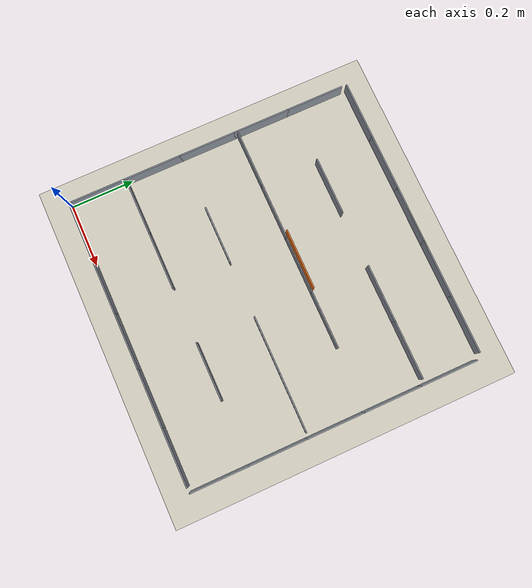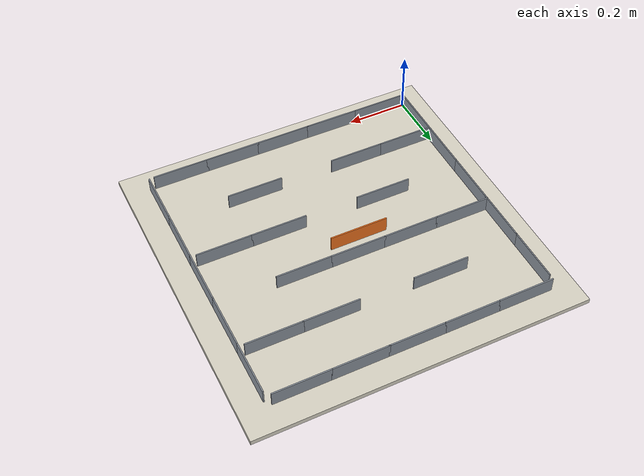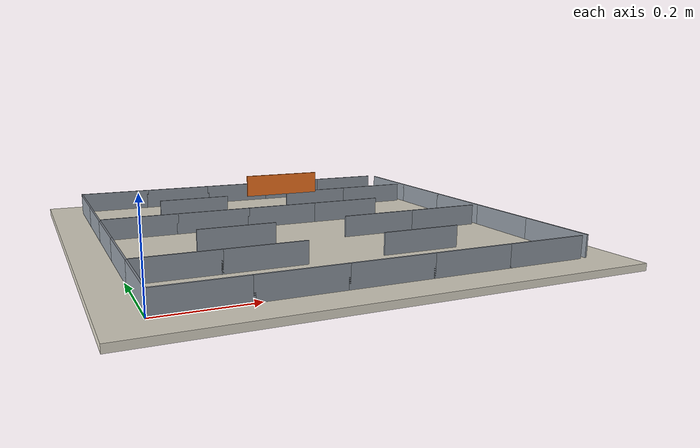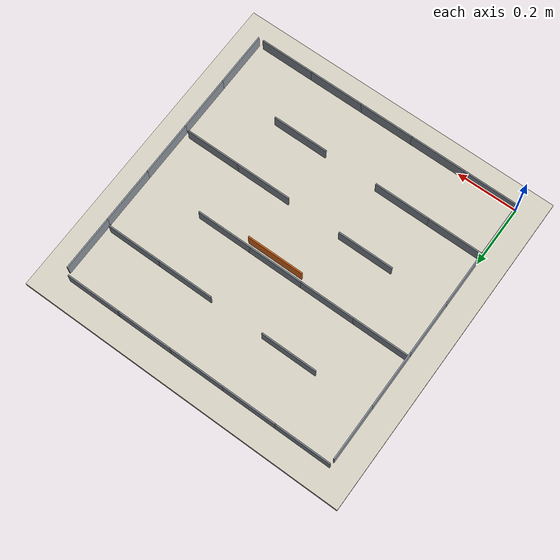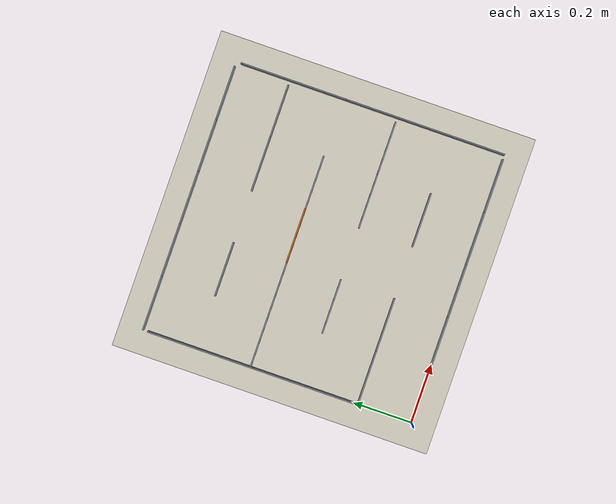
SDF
<?xml version="1.0" ?>
<sdf version="1.6">
  <world name="shiftgate_arena">
    <include><uri>model://sun</uri></include>
    <gravity>0 0 -9.8</gravity>
    <model name="ground">
      <static>true</static>
      <link name="link">
        <collision name="c"><geometry><box><size>1.084 1.084 0.016</size></box></geometry></collision>
        <visual name="v"><geometry><box><size>1.084 1.084 0.016</size></box></geometry>
          <material><ambient>0.86 0.84 0.78 1</ambient><diffuse>0.86 0.84 0.78 1</diffuse></material>
        </visual>
        <pose>0.4620 0.4620 -0.008 0 0 0</pose>
      </link>
    </model>
    <model name="south_0">
      <static>true</static>
      <link name="link">
        <collision name="c"><geometry><box><size>0.1840 0.0040 0.0500</size></box></geometry></collision>
        <visual name="v"><geometry><box><size>0.1840 0.0040 0.0500</size></box></geometry>
          <material><ambient>0.55 0.58 0.62 1</ambient><diffuse>0.55 0.58 0.62 1</diffuse></material>
        </visual>
        <pose>0.0940 0.0020 0.0250 0 0 0</pose>
      </link>
    </model>
    <model name="north_0">
      <static>true</static>
      <link name="link">
        <collision name="c"><geometry><box><size>0.1840 0.0040 0.0500</size></box></geometry></collision>
        <visual name="v"><geometry><box><size>0.1840 0.0040 0.0500</size></box></geometry>
          <material><ambient>0.55 0.58 0.62 1</ambient><diffuse>0.55 0.58 0.62 1</diffuse></material>
        </visual>
        <pose>0.0940 0.9220 0.0250 0 0 0</pose>
      </link>
    </model>
    <model name="south_1">
      <static>true</static>
      <link name="link">
        <collision name="c"><geometry><box><size>0.1840 0.0040 0.0500</size></box></geometry></collision>
        <visual name="v"><geometry><box><size>0.1840 0.0040 0.0500</size></box></geometry>
          <material><ambient>0.55 0.58 0.62 1</ambient><diffuse>0.55 0.58 0.62 1</diffuse></material>
        </visual>
        <pose>0.2740 0.0020 0.0250 0 0 0</pose>
      </link>
    </model>
    <model name="north_1">
      <static>true</static>
      <link name="link">
        <collision name="c"><geometry><box><size>0.1840 0.0040 0.0500</size></box></geometry></collision>
        <visual name="v"><geometry><box><size>0.1840 0.0040 0.0500</size></box></geometry>
          <material><ambient>0.55 0.58 0.62 1</ambient><diffuse>0.55 0.58 0.62 1</diffuse></material>
        </visual>
        <pose>0.2740 0.9220 0.0250 0 0 0</pose>
      </link>
    </model>
    <model name="south_2">
      <static>true</static>
      <link name="link">
        <collision name="c"><geometry><box><size>0.1840 0.0040 0.0500</size></box></geometry></collision>
        <visual name="v"><geometry><box><size>0.1840 0.0040 0.0500</size></box></geometry>
          <material><ambient>0.55 0.58 0.62 1</ambient><diffuse>0.55 0.58 0.62 1</diffuse></material>
        </visual>
        <pose>0.4540 0.0020 0.0250 0 0 0</pose>
      </link>
    </model>
    <model name="north_2">
      <static>true</static>
      <link name="link">
        <collision name="c"><geometry><box><size>0.1840 0.0040 0.0500</size></box></geometry></collision>
        <visual name="v"><geometry><box><size>0.1840 0.0040 0.0500</size></box></geometry>
          <material><ambient>0.55 0.58 0.62 1</ambient><diffuse>0.55 0.58 0.62 1</diffuse></material>
        </visual>
        <pose>0.4540 0.9220 0.0250 0 0 0</pose>
      </link>
    </model>
    <model name="south_3">
      <static>true</static>
      <link name="link">
        <collision name="c"><geometry><box><size>0.1840 0.0040 0.0500</size></box></geometry></collision>
        <visual name="v"><geometry><box><size>0.1840 0.0040 0.0500</size></box></geometry>
          <material><ambient>0.55 0.58 0.62 1</ambient><diffuse>0.55 0.58 0.62 1</diffuse></material>
        </visual>
        <pose>0.6340 0.0020 0.0250 0 0 0</pose>
      </link>
    </model>
    <model name="north_3">
      <static>true</static>
      <link name="link">
        <collision name="c"><geometry><box><size>0.1840 0.0040 0.0500</size></box></geometry></collision>
        <visual name="v"><geometry><box><size>0.1840 0.0040 0.0500</size></box></geometry>
          <material><ambient>0.55 0.58 0.62 1</ambient><diffuse>0.55 0.58 0.62 1</diffuse></material>
        </visual>
        <pose>0.6340 0.9220 0.0250 0 0 0</pose>
      </link>
    </model>
    <model name="south_4">
      <static>true</static>
      <link name="link">
        <collision name="c"><geometry><box><size>0.1840 0.0040 0.0500</size></box></geometry></collision>
        <visual name="v"><geometry><box><size>0.1840 0.0040 0.0500</size></box></geometry>
          <material><ambient>0.55 0.58 0.62 1</ambient><diffuse>0.55 0.58 0.62 1</diffuse></material>
        </visual>
        <pose>0.8140 0.0020 0.0250 0 0 0</pose>
      </link>
    </model>
    <model name="north_4">
      <static>true</static>
      <link name="link">
        <collision name="c"><geometry><box><size>0.1840 0.0040 0.0500</size></box></geometry></collision>
        <visual name="v"><geometry><box><size>0.1840 0.0040 0.0500</size></box></geometry>
          <material><ambient>0.55 0.58 0.62 1</ambient><diffuse>0.55 0.58 0.62 1</diffuse></material>
        </visual>
        <pose>0.8140 0.9220 0.0250 0 0 0</pose>
      </link>
    </model>
    <model name="west_0">
      <static>true</static>
      <link name="link">
        <collision name="c"><geometry><box><size>0.0040 0.1840 0.0500</size></box></geometry></collision>
        <visual name="v"><geometry><box><size>0.0040 0.1840 0.0500</size></box></geometry>
          <material><ambient>0.55 0.58 0.62 1</ambient><diffuse>0.55 0.58 0.62 1</diffuse></material>
        </visual>
        <pose>0.0020 0.0940 0.0250 0 0 0</pose>
      </link>
    </model>
    <model name="east_0">
      <static>true</static>
      <link name="link">
        <collision name="c"><geometry><box><size>0.0040 0.1840 0.0500</size></box></geometry></collision>
        <visual name="v"><geometry><box><size>0.0040 0.1840 0.0500</size></box></geometry>
          <material><ambient>0.55 0.58 0.62 1</ambient><diffuse>0.55 0.58 0.62 1</diffuse></material>
        </visual>
        <pose>0.9220 0.0940 0.0250 0 0 0</pose>
      </link>
    </model>
    <model name="west_1">
      <static>true</static>
      <link name="link">
        <collision name="c"><geometry><box><size>0.0040 0.1840 0.0500</size></box></geometry></collision>
        <visual name="v"><geometry><box><size>0.0040 0.1840 0.0500</size></box></geometry>
          <material><ambient>0.55 0.58 0.62 1</ambient><diffuse>0.55 0.58 0.62 1</diffuse></material>
        </visual>
        <pose>0.0020 0.2740 0.0250 0 0 0</pose>
      </link>
    </model>
    <model name="east_1">
      <static>true</static>
      <link name="link">
        <collision name="c"><geometry><box><size>0.0040 0.1840 0.0500</size></box></geometry></collision>
        <visual name="v"><geometry><box><size>0.0040 0.1840 0.0500</size></box></geometry>
          <material><ambient>0.55 0.58 0.62 1</ambient><diffuse>0.55 0.58 0.62 1</diffuse></material>
        </visual>
        <pose>0.9220 0.2740 0.0250 0 0 0</pose>
      </link>
    </model>
    <model name="west_2">
      <static>true</static>
      <link name="link">
        <collision name="c"><geometry><box><size>0.0040 0.1840 0.0500</size></box></geometry></collision>
        <visual name="v"><geometry><box><size>0.0040 0.1840 0.0500</size></box></geometry>
          <material><ambient>0.55 0.58 0.62 1</ambient><diffuse>0.55 0.58 0.62 1</diffuse></material>
        </visual>
        <pose>0.0020 0.4540 0.0250 0 0 0</pose>
      </link>
    </model>
    <model name="east_2">
      <static>true</static>
      <link name="link">
        <collision name="c"><geometry><box><size>0.0040 0.1840 0.0500</size></box></geometry></collision>
        <visual name="v"><geometry><box><size>0.0040 0.1840 0.0500</size></box></geometry>
          <material><ambient>0.55 0.58 0.62 1</ambient><diffuse>0.55 0.58 0.62 1</diffuse></material>
        </visual>
        <pose>0.9220 0.4540 0.0250 0 0 0</pose>
      </link>
    </model>
    <model name="west_3">
      <static>true</static>
      <link name="link">
        <collision name="c"><geometry><box><size>0.0040 0.1840 0.0500</size></box></geometry></collision>
        <visual name="v"><geometry><box><size>0.0040 0.1840 0.0500</size></box></geometry>
          <material><ambient>0.55 0.58 0.62 1</ambient><diffuse>0.55 0.58 0.62 1</diffuse></material>
        </visual>
        <pose>0.0020 0.6340 0.0250 0 0 0</pose>
      </link>
    </model>
    <model name="east_3">
      <static>true</static>
      <link name="link">
        <collision name="c"><geometry><box><size>0.0040 0.1840 0.0500</size></box></geometry></collision>
        <visual name="v"><geometry><box><size>0.0040 0.1840 0.0500</size></box></geometry>
          <material><ambient>0.55 0.58 0.62 1</ambient><diffuse>0.55 0.58 0.62 1</diffuse></material>
        </visual>
        <pose>0.9220 0.6340 0.0250 0 0 0</pose>
      </link>
    </model>
    <model name="west_4">
      <static>true</static>
      <link name="link">
        <collision name="c"><geometry><box><size>0.0040 0.1840 0.0500</size></box></geometry></collision>
        <visual name="v"><geometry><box><size>0.0040 0.1840 0.0500</size></box></geometry>
          <material><ambient>0.55 0.58 0.62 1</ambient><diffuse>0.55 0.58 0.62 1</diffuse></material>
        </visual>
        <pose>0.0020 0.8140 0.0250 0 0 0</pose>
      </link>
    </model>
    <model name="east_4">
      <static>true</static>
      <link name="link">
        <collision name="c"><geometry><box><size>0.0040 0.1840 0.0500</size></box></geometry></collision>
        <visual name="v"><geometry><box><size>0.0040 0.1840 0.0500</size></box></geometry>
          <material><ambient>0.55 0.58 0.62 1</ambient><diffuse>0.55 0.58 0.62 1</diffuse></material>
        </visual>
        <pose>0.9220 0.8140 0.0250 0 0 0</pose>
      </link>
    </model>
    <model name="h_0_0">
      <static>true</static>
      <link name="link">
        <collision name="c"><geometry><box><size>0.1840 0.0040 0.0500</size></box></geometry></collision>
        <visual name="v"><geometry><box><size>0.1840 0.0040 0.0500</size></box></geometry>
          <material><ambient>0.55 0.58 0.62 1</ambient><diffuse>0.55 0.58 0.62 1</diffuse></material>
        </visual>
        <pose>0.0940 0.1860 0.0250 0 0 0</pose>
      </link>
    </model>
    <model name="h_0_2">
      <static>true</static>
      <link name="link">
        <collision name="c"><geometry><box><size>0.1840 0.0040 0.0500</size></box></geometry></collision>
        <visual name="v"><geometry><box><size>0.1840 0.0040 0.0500</size></box></geometry>
          <material><ambient>0.55 0.58 0.62 1</ambient><diffuse>0.55 0.58 0.62 1</diffuse></material>
        </visual>
        <pose>0.0940 0.5540 0.0250 0 0 0</pose>
      </link>
    </model>
    <model name="h_1_0">
      <static>true</static>
      <link name="link">
        <collision name="c"><geometry><box><size>0.1840 0.0040 0.0500</size></box></geometry></collision>
        <visual name="v"><geometry><box><size>0.1840 0.0040 0.0500</size></box></geometry>
          <material><ambient>0.55 0.58 0.62 1</ambient><diffuse>0.55 0.58 0.62 1</diffuse></material>
        </visual>
        <pose>0.2740 0.1860 0.0250 0 0 0</pose>
      </link>
    </model>
    <model name="h_1_1">
      <static>true</static>
      <link name="link">
        <collision name="c"><geometry><box><size>0.1840 0.0040 0.0500</size></box></geometry></collision>
        <visual name="v"><geometry><box><size>0.1840 0.0040 0.0500</size></box></geometry>
          <material><ambient>0.55 0.58 0.62 1</ambient><diffuse>0.55 0.58 0.62 1</diffuse></material>
        </visual>
        <pose>0.2740 0.3700 0.0250 0 0 0</pose>
      </link>
    </model>
    <model name="h_1_2">
      <static>true</static>
      <link name="link">
        <collision name="c"><geometry><box><size>0.1840 0.0040 0.0500</size></box></geometry></collision>
        <visual name="v"><geometry><box><size>0.1840 0.0040 0.0500</size></box></geometry>
          <material><ambient>0.55 0.58 0.62 1</ambient><diffuse>0.55 0.58 0.62 1</diffuse></material>
        </visual>
        <pose>0.2740 0.5540 0.0250 0 0 0</pose>
      </link>
    </model>
    <model name="h_1_3">
      <static>true</static>
      <link name="link">
        <collision name="c"><geometry><box><size>0.1840 0.0040 0.0500</size></box></geometry></collision>
        <visual name="v"><geometry><box><size>0.1840 0.0040 0.0500</size></box></geometry>
          <material><ambient>0.55 0.58 0.62 1</ambient><diffuse>0.55 0.58 0.62 1</diffuse></material>
        </visual>
        <pose>0.2740 0.7380 0.0250 0 0 0</pose>
      </link>
    </model>
    <model name="h_2_2">
      <static>true</static>
      <link name="link">
        <collision name="c"><geometry><box><size>0.1840 0.0040 0.0500</size></box></geometry></collision>
        <visual name="v"><geometry><box><size>0.1840 0.0040 0.0500</size></box></geometry>
          <material><ambient>0.55 0.58 0.62 1</ambient><diffuse>0.55 0.58 0.62 1</diffuse></material>
        </visual>
        <pose>0.4540 0.5540 0.0250 0 0 0</pose>
      </link>
    </model>
    <model name="h_3_0">
      <static>true</static>
      <link name="link">
        <collision name="c"><geometry><box><size>0.1840 0.0040 0.0500</size></box></geometry></collision>
        <visual name="v"><geometry><box><size>0.1840 0.0040 0.0500</size></box></geometry>
          <material><ambient>0.55 0.58 0.62 1</ambient><diffuse>0.55 0.58 0.62 1</diffuse></material>
        </visual>
        <pose>0.6340 0.1860 0.0250 0 0 0</pose>
      </link>
    </model>
    <model name="h_3_1">
      <static>true</static>
      <link name="link">
        <collision name="c"><geometry><box><size>0.1840 0.0040 0.0500</size></box></geometry></collision>
        <visual name="v"><geometry><box><size>0.1840 0.0040 0.0500</size></box></geometry>
          <material><ambient>0.55 0.58 0.62 1</ambient><diffuse>0.55 0.58 0.62 1</diffuse></material>
        </visual>
        <pose>0.6340 0.3700 0.0250 0 0 0</pose>
      </link>
    </model>
    <model name="h_3_2">
      <static>true</static>
      <link name="link">
        <collision name="c"><geometry><box><size>0.1840 0.0040 0.0500</size></box></geometry></collision>
        <visual name="v"><geometry><box><size>0.1840 0.0040 0.0500</size></box></geometry>
          <material><ambient>0.55 0.58 0.62 1</ambient><diffuse>0.55 0.58 0.62 1</diffuse></material>
        </visual>
        <pose>0.6340 0.5540 0.0250 0 0 0</pose>
      </link>
    </model>
    <model name="h_3_3">
      <static>true</static>
      <link name="link">
        <collision name="c"><geometry><box><size>0.1840 0.0040 0.0500</size></box></geometry></collision>
        <visual name="v"><geometry><box><size>0.1840 0.0040 0.0500</size></box></geometry>
          <material><ambient>0.55 0.58 0.62 1</ambient><diffuse>0.55 0.58 0.62 1</diffuse></material>
        </visual>
        <pose>0.6340 0.7380 0.0250 0 0 0</pose>
      </link>
    </model>
    <model name="h_4_1">
      <static>true</static>
      <link name="link">
        <collision name="c"><geometry><box><size>0.1840 0.0040 0.0500</size></box></geometry></collision>
        <visual name="v"><geometry><box><size>0.1840 0.0040 0.0500</size></box></geometry>
          <material><ambient>0.55 0.58 0.62 1</ambient><diffuse>0.55 0.58 0.62 1</diffuse></material>
        </visual>
        <pose>0.8140 0.3700 0.0250 0 0 0</pose>
      </link>
    </model>
    <model name="h_4_3">
      <static>true</static>
      <link name="link">
        <collision name="c"><geometry><box><size>0.1840 0.0040 0.0500</size></box></geometry></collision>
        <visual name="v"><geometry><box><size>0.1840 0.0040 0.0500</size></box></geometry>
          <material><ambient>0.55 0.58 0.62 1</ambient><diffuse>0.55 0.58 0.62 1</diffuse></material>
        </visual>
        <pose>0.8140 0.7380 0.0250 0 0 0</pose>
      </link>
    </model>
    <model name="gate">
      <static>true</static>
      <link name="link">
        <collision name="c"><geometry><box><size>0.1840 0.0040 0.0500</size></box></geometry></collision>
        <visual name="v"><geometry><box><size>0.1840 0.0040 0.0500</size></box></geometry>
          <material><ambient>0.95 0.45 0.12 1</ambient><diffuse>0.95 0.45 0.12 1</diffuse></material>
        </visual>
        <pose>0.4540 0.5540 0.1050 0 0 0</pose>
      </link>
    </model>
    <plugin name="gazebo_ros_state" filename="libgazebo_ros_state.so">
      <ros></ros>
    </plugin>
  </world>
</sdf>
